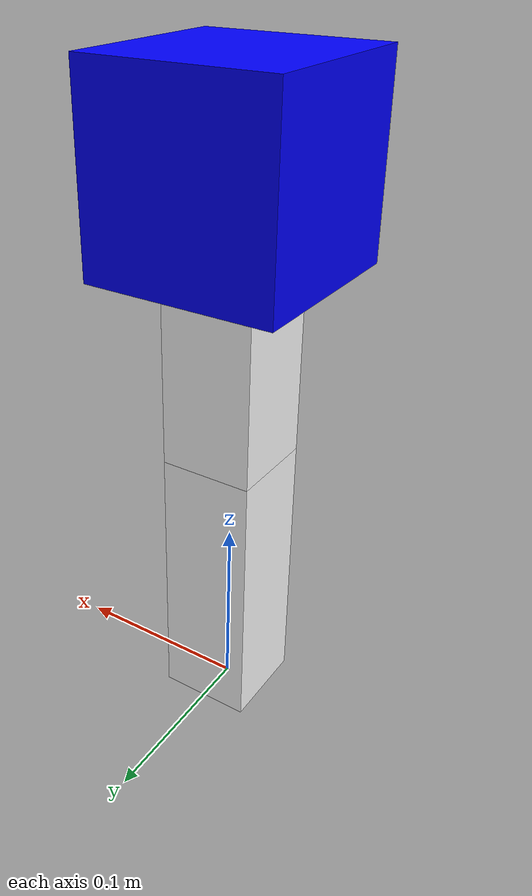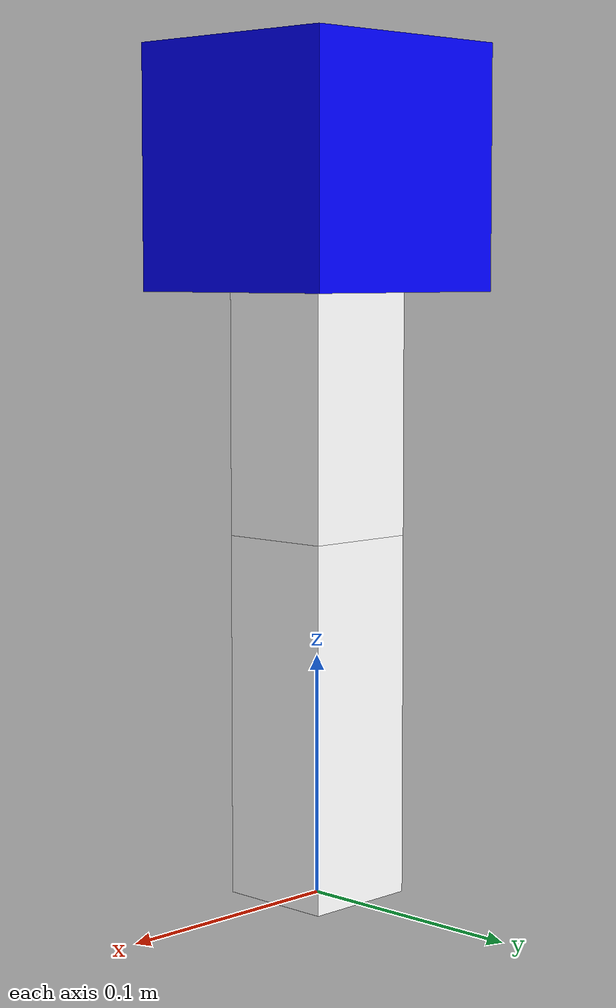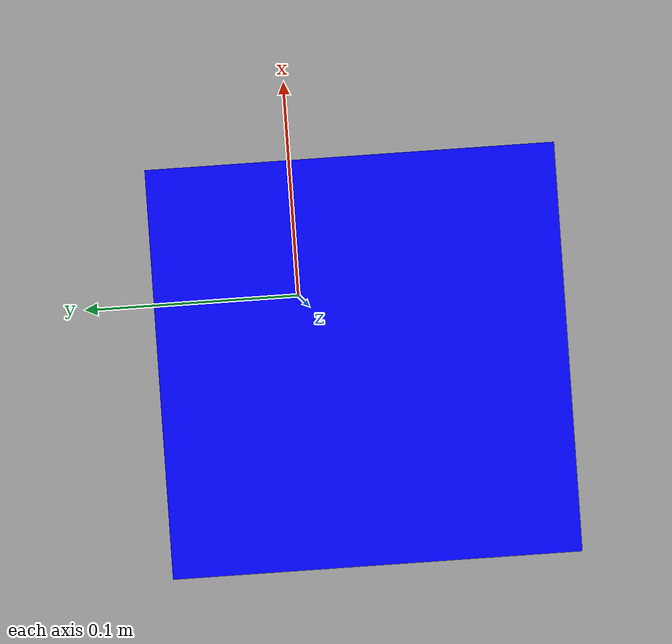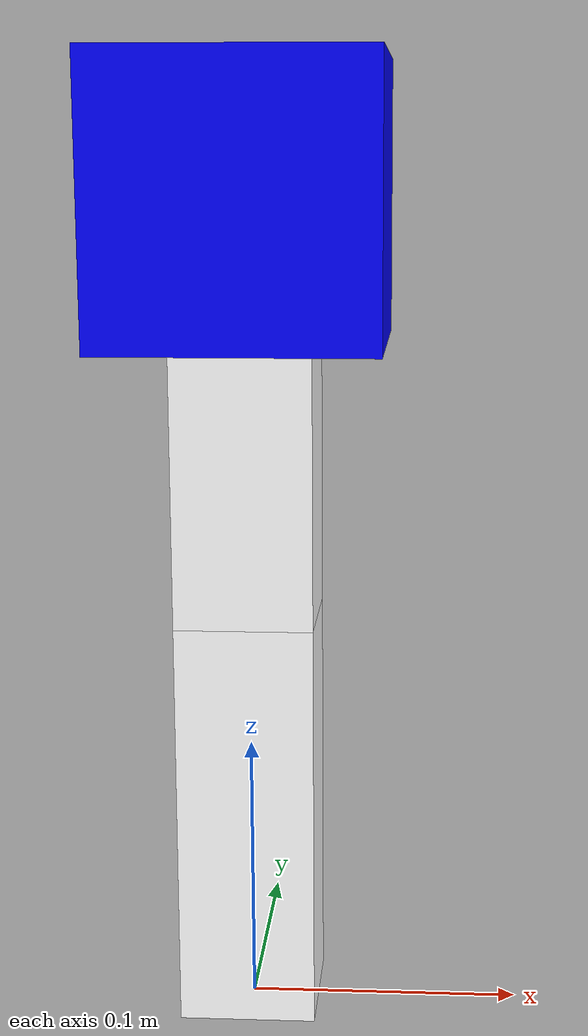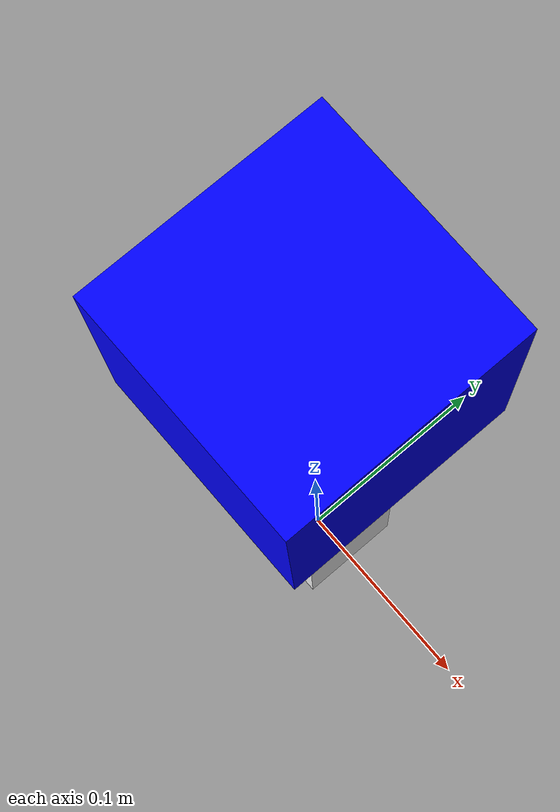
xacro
<?xml version="1.0"?>
<robot name="simple_leg" xmlns:xacro="http://www.ros.org/wiki/xacro">
    <!-- Constants -->
    <xacro:property name="Baselink_x" value="0.1"/>
    <xacro:property name="Baselink_y" value="0.1"/>
    <xacro:property name="Baselink_z" value="0.1"/>
    <xacro:property name="l1" value="0.15"/>
    <xacro:property name="l2" value="0.15"/>

    <!-- Color settings -->
    <material name="red">
        <color rgba="1.0 0.0 0.0 1.0"/>
    </material>
    <material name="blue">
        <color rgba="0.0 0.0 1.0 1.0"/>
    </material>
    <material name="white">
        <color rgba="1.0 1.0 1.0 1.0"/>
    </material>

    <!-- Description of robot -->
    <link name="base_footprint"/>

    <!-- Baselink -->
    <joint name="Base_joint" type="floating">
        <parent link="base_footprint"/>
        <child link="Base_link"/>
        <origin rpy="0 0 0" xyz="0 0 0.3"/>
    </joint>
    <link name="Base_link">
        <visual>
            <origin rpy="0 0 0" xyz="0 0 0"/>
            <geometry>
                <box size="${Baselink_x} ${Baselink_y} ${Baselink_z}"/>
            </geometry>
            <material name="blue"/>
        </visual>
        <collision>
            <origin rpy="0 0 0" xyz="0 0 0"/>
            <geometry>
                <box size="${Baselink_x} ${Baselink_y} ${Baselink_z}"/>
            </geometry>
        </collision>
        <inertial>
            <mass value="5.0"/>
            <inertia ixx="5.0" ixy="0" ixz="0" iyy="5.0" iyz="0" izz="5.0"/>
        </inertial>
    </link>

    <!-- Hip_joint & UpperThigh_link -->
    <joint name="Hip" type="revolute">
        <parent link="Base_link"/>
        <child link="UpperThigh"/>
        <axis xyz="0 1 0"/>
        <origin rpy="0 0 0" xyz="0 0 0"/>
        <limit effort="1000" lower="${radians(-90)}" upper="${radians(90)}" velocity="100.0"/>
    </joint>
    <link name="UpperThigh">
        <visual>
            <origin rpy="0 0 0" xyz="0 0 -${l1/2}"/>
            <geometry>
                <box size="0.05 0.05 ${l1}"/>
            </geometry>
            <material name="white"/>
        </visual>
        <collision>
            <origin rpy="0 0 0" xyz="0 0 -${l1/2}"/>
            <geometry>
                <box size="0.05 0.05 ${l1}"/>
            </geometry>
        </collision>
        <inertial>
            <mass value="1.0"/>
            <inertia ixx="1.0" ixy="0" ixz="0" iyy="1.0" iyz="0" izz="1.0"/>
        </inertial>
    </link>

    <!-- Knee_joint & LowerThigh_link -->
    <joint name="Knee" type="revolute">
        <parent link="UpperThigh"/>
        <child link="LowerThigh"/>
        <axis xyz="0 1 0"/>
        <origin rpy="0 0 0" xyz="0 0 -${l1}"/>
        <limit effort="1000" lower="${radians(-90)}" upper="${radians(90)}" velocity="100.0"/>
    </joint>
    <link name="LowerThigh">
        <visual>
            <origin rpy="0 0 0" xyz="0 0 -${l2/2}"/>
            <geometry>
                <box size="0.05 0.05 ${l2}"/>
            </geometry>
            <material name="white"/>
        </visual>
        <collision>
            <origin rpy="0 0 0" xyz="0 0 -${l2/2}"/>
            <geometry>
                <box size="0.05 0.05 ${l2}"/>
            </geometry>
        </collision>
        <inertial>
            <mass value="1.0"/>
            <inertia ixx="1.0" ixy="0" ixz="0" iyy="1.0" iyz="0" izz="1.0"/>
        </inertial>
    </link>

    <!-- Actuator Settings -->
    <transmission name="Hip_trans"  type="SimpleTransmission">
        <type>transmission_interface/SimpleTransmission</type>
        <joint name="Hip">
            <hardwareInterface>hardware_interface/PositionJointInterface</hardwareInterface>
        </joint>
        <actuator name="Hip_motor">
            <hardwareInterface>hardware_interface/PositionJointInterface</hardwareInterface>
            <mechanicalReduction>1</mechanicalReduction>
        </actuator>
    </transmission>

    <transmission name="Knee_trans"  type="SimpleTransmission">
        <type>transmission_interface/SimpleTransmission</type>
        <joint name="Knee">
            <hardwareInterface>hardware_interface/PositionJointInterface</hardwareInterface>
        </joint>
        <actuator name="Knee_motor">
            <hardwareInterface>hardware_interface/PositionJointInterface</hardwareInterface>
            <mechanicalReduction>1</mechanicalReduction>
        </actuator>
    </transmission>

    <gazebo><!-- Do I have to write it down? -->
        <plugin name="gazebo_ros_control" filename="libgazebo_ros_control.so">
            <robotNamespace>/simple_leg</robotNamespace>
            <robotSimType>gazebo_ros_control/DefaultRobotHWSim</robotSimType>
        </plugin>
    </gazebo>
    <!-- Gazebo color setting -->
    <gazebo reference="Baselink">
        <material>Gazebo/Blue</material>
    </gazebo>

    <gazebo reference="UpperThigh">
        <material>Gazebo/White</material>
    </gazebo>

    <gazebo reference="LowerThigh">
        <material>Gazebo/White</material>
    </gazebo>
</robot>
